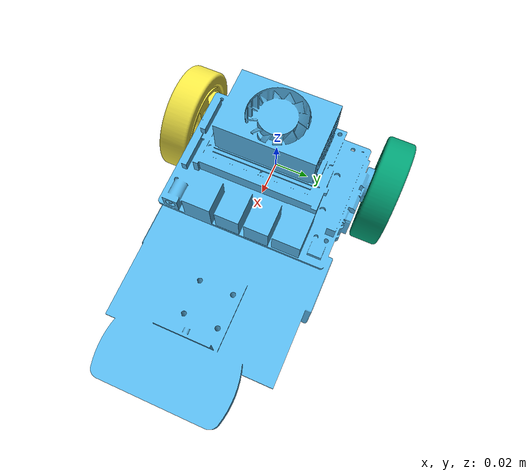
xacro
<?xml version="1.0"?>
<robot name="robot" xmlns:xacro="http://ros.org/wiki/xacro">

  <!-- =============== Properties =============== -->
  <xacro:property name="PI" value="3.14159274"/>

  <!-- =============== Robot Structure =============== -->

  <!-- Base Footprint -->
  <link name="base_footprint"/>

  <!-- Base Link Joint -->
  <joint name="base_link_joint" type="fixed">
    <origin xyz="0 0 0" rpy="0 0 0"/>
    <parent link="base_footprint"/>
    <child link="base_link"/>
  </joint>

  <!-- Base Link -->
  <link name="base_link">
    <visual>
      <geometry>
        <mesh filename="package://robot_description/meshes/DAE/base/base.dae"/>
      </geometry>
    </visual>
    <collision>
      <geometry>
        <mesh filename="package://robot_description/meshes/STL/base/base.stl"/>
      </geometry>
    </collision>
    <inertial>
      <origin xyz="0 0 0"/>
      <mass value="0.7"/>
      <inertia ixx="0.003" ixy="0" ixz="0" iyy="0.003" iyz="0" izz="0.006" />
    </inertial>
    <surface>
      <friction>
        <ode>
          <mu>0.8</mu>
          <mu2>0.8</mu2>
          <kp>1e15</kp>
          <kd>1e13</kd>
        </ode>
      </friction>
      <bounce>
        <restitution_coefficient>0.01</restitution_coefficient>
        <threshold>10</threshold>
      </bounce>
      <contact>
        <ode>
          <max_vel>0.01</max_vel>
          <minDepth>0</minDepth>
          <contact_surface_layer>0</contact_surface_layer>
        </ode>
      </contact>
    </surface>
  </link>

  <!-- =============== Left Wheel =============== -->

  <!-- Left Wheel Joint -->
  <joint name="left_wheel_joint" type="continuous">
    <origin xyz="-0.01875 0.065 -0.019" rpy="0 0 0"/>
    <parent link="base_link"/>
    <child link="left_wheel_link"/>
    <limit effort="100" velocity="100"/>
    <axis xyz="0 1 0"/>
  </joint>

  <!-- Left Wheel Link -->
  <link name="left_wheel_link">
    <visual>
      <geometry>
        <mesh filename="package://robot_description/meshes/DAE/wheel/wheel.dae"/>
      </geometry>
    </visual>
    <collision>
      <geometry>
        <mesh filename="package://robot_description/meshes/STL/wheel/wheel.stl"/>
      </geometry>
    </collision>
    <inertial>
      <origin xyz="0.0 -0.001 0.0"/>
      <mass value="0.036"/>
      <inertia ixx="0.000014072" ixy="0" ixz="0" iyy="0.000026303" iyz="0" izz="0.000014072"/>
    </inertial>
    <surface>
      <friction>
        <ode>
          <mu1>1.2</mu1>
          <mu2>1.2</mu2>
          <kp>1e15</kp>
          <kd>1e13</kd>
        </ode>
      </friction>
      <bounce>
        <restitution_coefficient>0.01</restitution_coefficient>
        <threshold>0</threshold>
      </bounce>
      <contact>
        <ode>
          <max_vel>10</max_vel>
        </ode>
      </contact>
    </surface>
  </link>

  <!-- =============== Right Wheel =============== -->

  <!-- Right Wheel Joint -->
  <joint name="right_wheel_joint" type="continuous">
    <origin xyz="-0.01875 -0.065 -0.019" rpy="0 0 ${PI}"/>
    <parent link="base_link"/>
    <child link="right_wheel_link"/>
    <limit effort="100" velocity="100"/>
    <axis xyz="0 -1 0"/>
  </joint>

  <!-- Right Wheel Link -->
  <link name="right_wheel_link">
    <visual>
      <geometry>
        <mesh filename="package://robot_description/meshes/DAE/wheel/wheel.dae"/>
      </geometry>
    </visual>
    <collision>
      <geometry>
        <mesh filename="package://robot_description/meshes/STL/wheel/wheel.stl"/>
      </geometry>
    </collision>
    <inertial>
      <origin xyz="0.0 -0.001 0.0"/>
      <mass value="0.036"/>
      <inertia ixx="0.000014072" ixy="0" ixz="0" iyy="0.000026303" iyz="0" izz="0.000014072"/>
    </inertial>
    <surface>
      <friction>
        <ode>
          <mu1>1.2</mu1>
          <mu2>1.2</mu2>
          <kp>1e15</kp>
          <kd>1e13</kd>
        </ode>
      </friction>
      <bounce>
        <restitution_coefficient>0.01</restitution_coefficient>
        <threshold>0</threshold>
      </bounce>
      <contact>
        <ode>
          <max_vel>10</max_vel>
        </ode>
      </contact>
    </surface>
  </link>

  <!-- =============== Caster Front =============== -->

  <!-- Front Yaw Link -->
  <link name="front_yaw_link">
    <inertial>
      <mass value="0.001"/>
      <origin rpy="0 1.5707 1.5707" xyz="0 0 0"/>
      <inertia ixx="5.14583e-09" ixy="0" ixz="0" iyy="5.14583e-09" iyz="0" izz="1.0125e-08"/>
    </inertial>
    <collision name="link_right_wheel_collision">
      <origin rpy="0 1.5707 1.5707" xyz="0 0 0"/>
      <geometry>
        <cylinder length="0.001" radius="0.0045"/>
      </geometry>
    </collision>
  </link>

  <joint name="front_yaw_joint" type="continuous">
    <origin rpy="0 0 0" xyz="0.093283 0 -0.047"/>
    <parent link="base_link"/>
    <child link="front_yaw_link"/>
    <axis xyz="0 0 1"/>
    <limit effort="1000.0" velocity="100.0"/>
    <dynamics damping="0.0" friction="0.1"/>
  </joint>

  <!-- Front Roll Link -->
  <link name="front_roll_link">
    <inertial>
      <mass value="0.001"/>
      <origin rpy="0 1.5707 1.5707" xyz="0 0 0"/>
      <inertia ixx="5.14583e-09" ixy="0" ixz="0" iyy="5.14583e-09" iyz="0" izz="1.0125e-08"/>
    </inertial>
    <collision name="link_right_wheel_collision">
      <origin rpy="0 1.5707 1.5707" xyz="0 0 0"/>
      <geometry>
        <cylinder length="0.001" radius="0.0045"/>
      </geometry>
    </collision>
  </link>

  <joint name="front_roll_joint" type="continuous">
    <origin rpy="0 0 0" xyz="0 0 0"/>
    <parent link="front_yaw_link"/>
    <child link="front_roll_link"/>
    <axis xyz="1 0 0"/>
    <limit effort="1000.0" velocity="100.0"/>
    <dynamics damping="0.0" friction="0.1"/>
  </joint>

  <!-- Front Pitch Link -->
  <link name="front_pitch_link">
    <inertial>
      <mass value="0.001"/>
      <origin rpy="0 1.5707 1.5707" xyz="0 0 0"/>
      <inertia ixx="4e-08" ixy="0" ixz="0" iyy="4e-08" iyz="0" izz="4e-08"/>
    </inertial>
    <collision name="front_collision">
      <origin rpy="0 1.5707 1.5707" xyz="0 0 0"/>
      <geometry>
        <sphere radius="0.005"/>
      </geometry>
    </collision>
    <visual name="front_visual">
      <origin rpy="0 1.5707 1.5707" xyz="0 0 0"/>
      <geometry>
        <sphere radius="0.005"/>
      </geometry>
    </visual>
  </link>

  <joint name="front_pitch_joint" type="continuous">
    <origin rpy="0 0 0" xyz="0 0 0"/>
    <parent link="front_roll_link"/>
    <child link="front_pitch_link"/>
    <axis xyz="0 1 0"/>
    <limit effort="1000.0" velocity="100.0"/>
    <dynamics damping="0.0" friction="0.1"/>
  </joint>

</robot>
